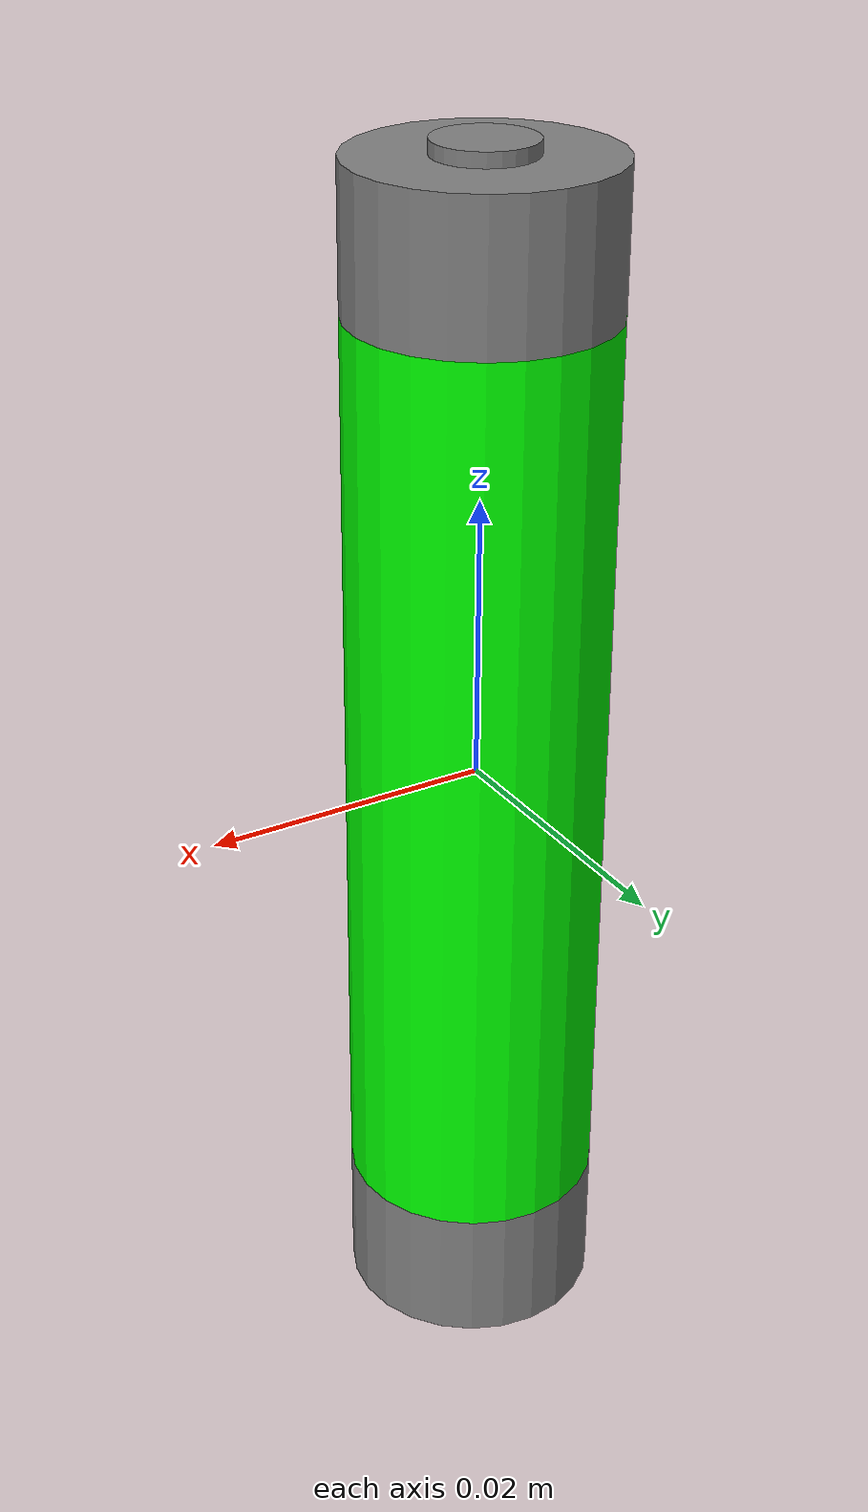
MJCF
<mujoco model="battery_2">
    <worldbody>
        <body name="battery" pos="0 0 0">
            <!-- Main green body -->
            <geom name="battery_body" type="cylinder" pos="0 0 0" size="0.009 0.0325" rgba="0 1 0 1" mass="0.045" friction="1 0.005 0.0001" condim="4"/>

            <!-- Bottom grey cap -->
            <geom name="battery_bottom_cap" type="cylinder" pos="0 0 -0.0375" size="0.009 0.005" rgba="0.5 0.5 0.5 1" mass="0.005" friction="1 0.005 0.0001" condim="4"/>

            <!-- Top grey cap -->
            <geom name="battery_top_cap" type="cylinder" pos="0 0 0.0375" size="0.009 0.005" rgba="0.5 0.5 0.5 1" mass="0.005" friction="1 0.005 0.0001" condim="4"/>

            <!-- Positive bump on top -->
            <geom name="battery_positive_bump" type="cylinder" pos="0 0 0.0405" size="0.0035 0.003" rgba="0.5 0.5 0.5 1" mass="0.001" friction="1 0.005 0.0001" condim="4"/>

            <!-- Make it one solid object -->
            <joint name="battery_joint" type="free"/>
        </body>
    </worldbody>
</mujoco>
